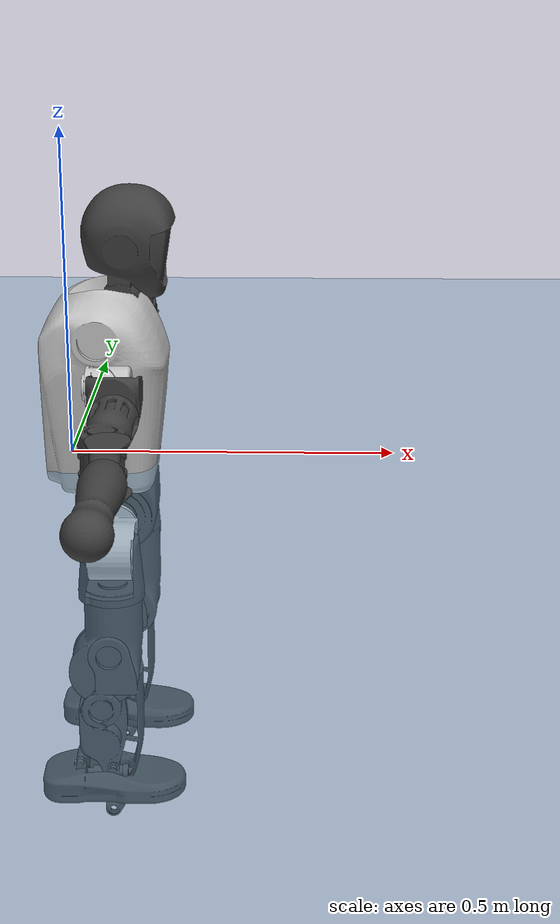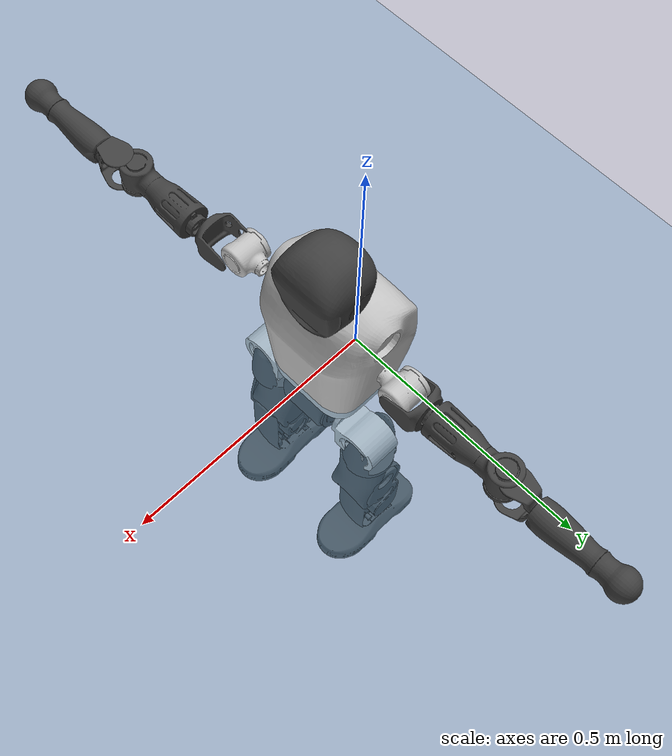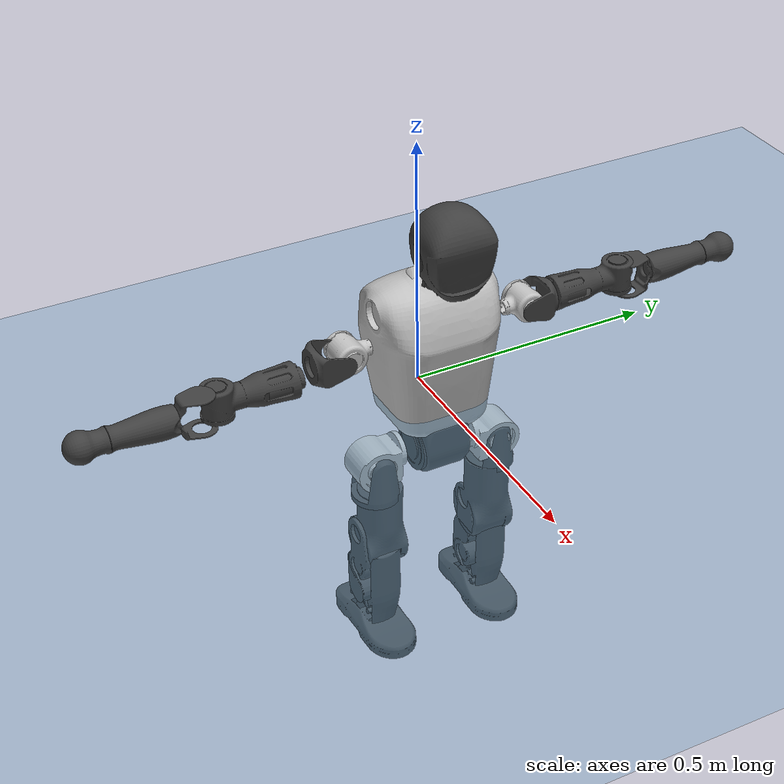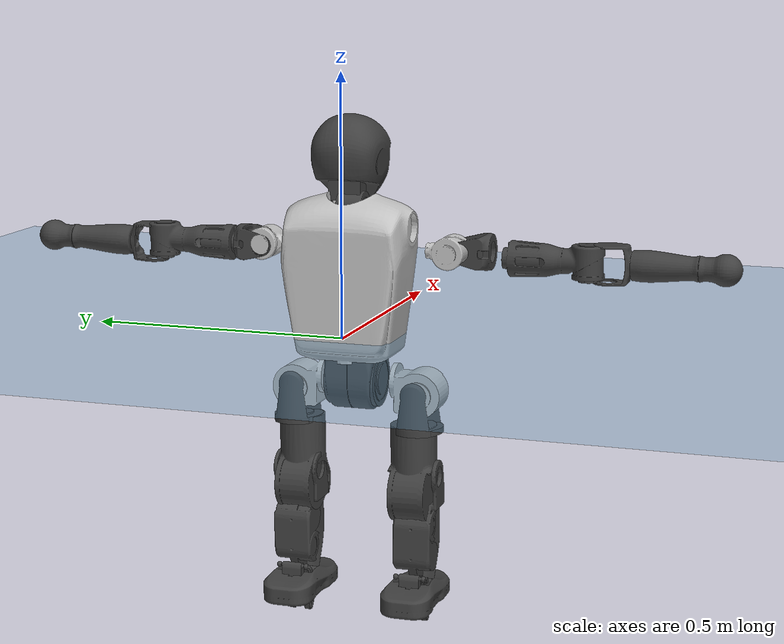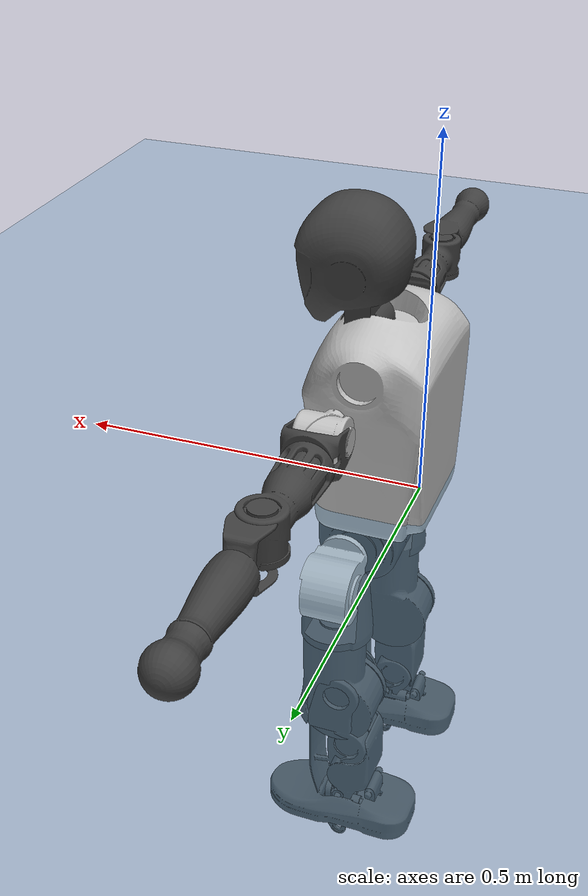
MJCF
<mujoco model="T1">
  <compiler angle="radian" assetdir="assets" balanceinertia="true" inertiafromgeom="false"/>

  <option timestep="0.005" density="1.2" viscosity="2e-05"/>

  <size nkey="1"/>

  <visual>
    <quality shadowsize="8192"/>
    <map shadowclip="0.5"/>
  </visual>

  <default>
    <default class="/">
      <joint armature="0.01" damping="0.01" frictionloss="0.1"/>
      <geom contype="0" conaffinity="0" group="1" solref="-1000 -80"/>
      <site size="0.01 0.005 0.005" group="5"/>
      <general forcelimited="true" biastype="affine" gainprm="25" biasprm="0 -25 -0.6"/>
      <default class="t1">
        <geom rgba="0.25 0.25 0.25 1"/>
        <default class="visual">
          <geom type="mesh" group="2"/>
        </default>
        <default class="collision">
          <geom group="3"/>
        </default>
        <default class="foot">
          <geom size="0.1115 0.05 0.015" type="box" condim="6" group="4" priority="1" solimp="0.015 1 0.015"/>
        </default>
        <default class="reward_collision_sphere">
          <geom group="5" rgba="1 0 0 1"/>
        </default>
      </default>
    </default>
  </default>

  <asset>
    <texture type="skybox" colorspace="auto" name="//unnamed_texture_0" builtin="gradient" rgb1="0.95 0.95 0.95" rgb2="0.95 0.95 0.95" width="100" height="600"/>
    <texture type="2d" colorspace="auto" name="texplane" builtin="checker" rgb1="0.345 0.575 0.748" rgb2="0.345 0.575 0.748" markrgb="1 1 1" width="512" height="512"/>
    <material name="MatPlane" class="/" texture="texplane" texuniform="true" texrepeat="2 2" specular="0.9"/>
    <mesh name="Trunk" class="/" file="Trunk.stl"/>
    <mesh name="H1" class="/" file="H1.stl"/>
    <mesh name="H2" class="/" file="H2.stl"/>
    <mesh name="AL1" class="/" file="AL1.stl"/>
    <mesh name="AL2" class="/" file="AL2.stl"/>
    <mesh name="AL3" class="/" file="AL3.stl"/>
    <mesh name="left_hand_link" class="/" file="left_hand_link.stl"/>
    <mesh name="AR1" class="/" file="AR1.stl"/>
    <mesh name="AR2" class="/" file="AR2.stl"/>
    <mesh name="AR3" class="/" file="AR3.stl"/>
    <mesh name="right_hand_link" class="/" file="right_hand_link.stl"/>
    <mesh name="Waist" class="/" file="Waist.stl"/>
    <mesh name="Hip_Pitch_Left" class="/" file="Hip_Pitch_Left.stl"/>
    <mesh name="Hip_Roll_Left" class="/" file="Hip_Roll_Left.stl"/>
    <mesh name="Hip_Yaw_Left" class="/" file="Hip_Yaw_Left.stl"/>
    <mesh name="Shank_Left" class="/" file="Shank_Left.stl"/>
    <mesh name="Ankle_Cross_Left" class="/" file="Ankle_Cross_Left.stl"/>
    <mesh name="left_foot_link" class="/" file="left_foot_link.stl"/>
    <mesh name="Hip_Pitch_Right" class="/" file="Hip_Pitch_Right.stl"/>
    <mesh name="Hip_Roll_Right" class="/" file="Hip_Roll_Right.stl"/>
    <mesh name="Hip_Yaw_Right" class="/" file="Hip_Yaw_Right.stl"/>
    <mesh name="Shank_Right" class="/" file="Shank_Right.stl"/>
    <mesh name="Ankle_Cross_Right" class="/" file="Ankle_Cross_Right.stl"/>
    <mesh name="right_foot_link" class="/" file="right_foot_link.stl"/>
  </asset>

  <worldbody>
    <geom name="floor" class="/" size="100 100 0.125" type="plane" group="0" material="MatPlane"/>
    <light name="toplight_shadow" class="/" pos="0 0 5" dir="0.0990148 0.0990148 -0.990148" type="directional" ambient="0.04 0.04 0.04" diffuse="0.55 0.55 0.55" specular="0.12 0.12 0.12"/>
    <light name="toplight_fill" class="/" pos="0 0 5" dir="0.0990148 0.0990148 -0.990148" type="directional" castshadow="false" ambient="0.04 0.04 0.04" diffuse="0.3 0.3 0.3" specular="0.08 0.08 0.08"/>
    <body name="trunk" childclass="t1" pos="-0.000451746 0.000123882 -0.00989395" quat="1 0.000141531 -0.000262304 -7.70532e-05">
      <inertial pos="0.069421 -0.0018916 0.0860988" quat="0.999344 0.0224752 -0.0266237 -0.00992487" mass="16.6336" diaginertia="0.29282 0.22826 0.0183796"/>
      <joint name="//unnamed_joint_0" type="free" armature="0" damping="0" frictionloss="0"/>
      <geom name="//unnamed_geom_1" class="visual" rgba="0.76 0.76 0.76 1" mesh="Trunk"/>
      <geom name="//unnamed_geom_2" class="collision" size="0.0820794 0.109439 0.164159" pos="0.074825 0 0.094157" type="box"/>
      <geom name="//unnamed_geom_3" class="reward_collision_sphere" size="0.125855" pos="0.074825 0 0.0784641"/>
      <geom name="//unnamed_geom_4" class="reward_collision_sphere" size="0.0164159" pos="0.074825 0.106373 0"/>
      <geom name="//unnamed_geom_5" class="reward_collision_sphere" size="0.0164159" pos="0.074825 -0.106373 0"/>
      <geom name="//unnamed_geom_6" class="reward_collision_sphere" size="0.0164159" pos="0.074825 0.133905 0.141235"/>
      <geom name="//unnamed_geom_7" class="reward_collision_sphere" size="0.0164159" pos="0.074825 -0.133905 0.141235"/>
      <site name="imu" pos="-0.0671522 0.0566216 -0.0253066" size="0.0109439"/>
      <camera name="track" pos="0 -2.5029 0" quat="0.707107 0.707107 0 0" mode="trackcom"/>
      <camera name="ego_camera" pos="0.152144 0 0.329549" quat="-0.5 -0.5 0.5 0.5"/>
      <body name="H1" pos="0.0824363 0.0069827 0.187325" quat="0.999994 0.00250921 0.00223633 -0.000477261">
        <inertial pos="-0.00229672 4.6382e-05 0.0471835" quat="0.762164 0.00174839 -0.00660485 0.647348" mass="0.550786" diaginertia="0.000629006 0.000668078 3.73822e-05"/>
        <joint name="AAHead_yaw" pos="0 0 0" axis="0.00515528 -0.00741061 0.999959" range="-1.67025 1.42008" armature="0.00918294" damping="0.00941906" frictionloss="0.126633"/>
        <geom name="//unnamed_geom_8" class="visual" mesh="H1"/>
        <body name="H2" pos="0.000277 0.0119528 0.048216" quat="1 0.000312956 -0.000277874 0.000343192">
          <inertial pos="-0.00411206 -0.0109247 0.0692676" quat="0.98812 0.115131 -0.0571392 -0.0842541" mass="0.695775" diaginertia="0.00584532 0.00624563 0.000525422"/>
          <joint name="Head_pitch" pos="0 0 0" axis="-0.00150434 -0.999894 -0.0144514" range="-1.23193 0.18734" armature="0.0172443" damping="0.0406966" frictionloss="0.113349"/>
          <geom name="//unnamed_geom_9" class="visual" mesh="H2"/>
          <geom name="//unnamed_geom_10" class="collision" size="0.0875513" pos="0.0124708 0 0.0863106"/>
          <geom name="//unnamed_geom_11" class="reward_collision_sphere" size="0.0984953" pos="0.0249417 0 0.0784641"/>
        </body>
      </body>
      <body name="AL1" pos="0.0812195 0.135371 0.172601" quat="0.999995 0.00126179 0.00220451 0.00172206">
        <inertial pos="-0.00641059 0.0503038 -0.0121035" quat="0.481032 0.503959 -0.499136 0.515264" mass="0.728281" diaginertia="0.00427624 0.00405443 8.26999e-05"/>
        <joint name="Left_Shoulder_Pitch" pos="0 0 0" axis="0.0130431 0.999838 -0.0123788" stiffness="0.0538028" range="-3.07696 1.38264" armature="0.00992439" damping="0.0138351" frictionloss="0.102589"/>
        <geom name="//unnamed_geom_12" class="visual" rgba="0.76 0.76 0.76 1" mesh="AL1"/>
        <body name="AL2" pos="0.00044623 0.0471747 -0.00304116" quat="0.999977 0.005927 0.00119771 0.00300374">
          <inertial pos="-0.000586439 0.0463345 0.00952753" quat="0.489495 0.514142 -0.489801 0.506111" mass="0.146523" diaginertia="0.00102498 0.000787995 4.5551e-05"/>
          <joint name="Left_Shoulder_Roll" pos="0 0 0" axis="-0.997448 -0.046839 0.0538803" stiffness="0.0321048" range="-1.42071 1.77102" armature="0.00755256" damping="0.0698763" frictionloss="0.133615"/>
          <geom name="//unnamed_geom_13" class="visual" mesh="AL2"/>
          <body name="AL3" pos="-0.00453455 0.0641546 -0.00168198" quat="0.999975 -0.00686076 -0.0014411 0.000351318">
            <inertial pos="-0.00031885 0.107027 0.0010263" quat="0.67778 0.734483 -0.0330813 0.0074204" mass="1.13819" diaginertia="0.0328846 0.0335543 0.000168575"/>
            <joint name="Left_Elbow_Pitch" pos="0 0 0" axis="-0.00568376 -0.999974 -0.00436473" range="-2.15844 2.28582" armature="0.0113835" damping="0.00713839" frictionloss="0.116068"/>
            <geom name="//unnamed_geom_14" class="visual" mesh="AL3"/>
            <geom name="//unnamed_geom_15" class="collision" size="0.0328318 0.0820794" pos="0 0.0625725 0" quat="0.707105 0.707108 0 0" type="cylinder"/>
            <geom name="//unnamed_geom_16" class="reward_collision_sphere" size="0.0393981"/>
            <body name="left_hand_link" pos="0.0035372 0.171045 -0.00783673" quat="0.999981 0.00512149 0.000193715 0.00336763">
              <inertial pos="0.00140558 0.14265 0.012166" quat="0.672138 0.739823 0.029834 -0.00154591" mass="0.512784" diaginertia="0.0266299 0.0296701 8.07937e-05"/>
              <joint name="Left_Elbow_Yaw" pos="0 0 0" axis="-0.0109252 0.0523775 0.998568" range="-2.3989 -0.196706" armature="0.0105164" damping="0.0451737" frictionloss="0.0360044"/>
              <geom name="//unnamed_geom_17" class="visual" mesh="left_hand_link"/>
              <geom name="//unnamed_geom_18" class="collision" size="0.0328318 0.0957593" pos="0 0.162688 0" quat="0.707105 0.707108 0 0" type="cylinder"/>
              <geom name="//unnamed_geom_19" class="reward_collision_sphere" size="0.0547196"/>
              <geom name="//unnamed_geom_20" class="reward_collision_sphere" size="0.0383037" pos="0 0.137659 0"/>
              <geom name="//unnamed_geom_21" class="reward_collision_sphere" size="0.0383037" pos="0 0.269062 0"/>
            </body>
          </body>
        </body>
      </body>
      <body name="AR1" pos="0.0825074 -0.141742 0.172425" quat="1 0.000412281 8.67018e-05 0.000433508">
        <inertial pos="-0.000323014 -0.0538312 -0.000634209" quat="0.504764 0.495857 -0.503679 0.495628" mass="0.646353" diaginertia="0.00417943 0.00412738 8.6619e-05"/>
        <joint name="Right_Shoulder_Pitch" pos="0 0 0" axis="0.0281255 -0.999483 -0.0156076" range="-1.47118 3.33158" armature="0.0104977" damping="0" frictionloss="0.101936"/>
        <geom name="//unnamed_geom_22" class="visual" rgba="0.76 0.76 0.76 1" mesh="AR1"/>
        <body name="AR2" pos="0.0120844 -0.0683392 0.00184184" quat="0.999995 -0.00267346 -0.000179238 0.00158079">
          <inertial pos="0.0118545 -0.0524272 0.00892943" quat="0.49363 0.51479 -0.515946 0.474468" mass="0.194142" diaginertia="0.00130416 0.00116823 5.13369e-05"/>
          <joint name="Right_Shoulder_Roll" pos="0 0 0" axis="-0.999913 -0.00220964 0.0130107" range="-1.86724 1.81631" armature="0.0115961" damping="0.0014095" frictionloss="0.174131"/>
          <geom name="//unnamed_geom_23" class="visual" mesh="AR2"/>
          <body name="AR3" pos="0.00644297 -0.0889981 -0.0113548" quat="1 -0.000154126 -0.000251309 -0.000116167">
            <inertial pos="0.00049326 -0.103606 0.000522098" quat="0.742583 0.668069 -0.0422386 -0.0216813" mass="1.46876" diaginertia="0.0426948 0.0359979 0.000194309"/>
            <joint name="Right_Elbow_Pitch" pos="0 0 0" axis="0.00153099 0.999997 0.00187295" range="-2.30148 2.23622" armature="0.0118956" damping="0" frictionloss="0.0408196"/>
            <geom name="//unnamed_geom_24" class="visual" mesh="AR3"/>
            <geom name="//unnamed_geom_25" class="collision" size="0.0328318 0.0820794" pos="0 -0.0625725 0" quat="0.707105 0.707108 0 0" type="cylinder"/>
            <geom name="//unnamed_geom_26" class="reward_collision_sphere" size="0.0393981"/>
            <body name="right_hand_link" pos="0.0112514 -0.182331 -0.00373735" quat="0.999995 0.0012005 -0.00259053 -0.00154078">
              <inertial pos="-0.00170067 -0.136713 -0.0115707" quat="0.704501 0.707305 0.0150984 0.0562967" mass="0.488831" diaginertia="0.0314746 0.0294469 7.32871e-05"/>
              <joint name="Right_Elbow_Yaw" pos="0 0 0" axis="-0.00176629 0.00105579 0.999998" range="0.196827 2.3939" armature="0.0030556" damping="0.023476" frictionloss="0.112054"/>
              <geom name="//unnamed_geom_27" class="visual" mesh="right_hand_link"/>
              <geom name="//unnamed_geom_28" class="collision" size="0.0328318 0.0957593" pos="0 -0.162688 0" quat="0.707105 0.707108 0 0" type="cylinder"/>
              <geom name="//unnamed_geom_29" class="reward_collision_sphere" size="0.0547196"/>
              <geom name="//unnamed_geom_30" class="reward_collision_sphere" size="0.0383037" pos="0 -0.137659 0"/>
              <geom name="//unnamed_geom_31" class="reward_collision_sphere" size="0.0383037" pos="0 -0.269062 0"/>
            </body>
          </body>
        </body>
      </body>
      <body name="Waist" pos="0.0743618 -0.00418253 -0.0808658" quat="1 1.73126e-06 -7.48434e-05 -0.000105788">
        <inertial pos="-0.00947348 -0.00121091 0.00673464" quat="0.981424 -0.0168975 -0.189856 0.0218223" mass="3.41867" diaginertia="0.0181095 0.0211291 0.00155557"/>
        <joint name="Waist" pos="0 0 0" axis="-0.0123869 0.0136039 0.999831" range="-1.84239 1.46356" armature="0.0163518" damping="0.00982774" frictionloss="0.112262"/>
        <geom name="//unnamed_geom_32" class="visual" mesh="Waist"/>
        <body name="Hip_Pitch_Left" pos="0.0120023 0.121434 -0.0036212" quat="0.99998 -0.00515932 0.00299943 0.0020899">
          <inertial pos="0.00812032 -0.0223824 -0.0159975" quat="0.974821 0.222696 0.00944906 0.00640182" mass="1.50926" diaginertia="0.00607003 0.00405732 0.000416709"/>
          <joint name="Left_Hip_Pitch" pos="0 0 0" axis="0.00695553 0.999949 0.00725904" range="-1.78621 1.40979" armature="0.011226" damping="0" frictionloss="0.108354"/>
          <geom name="//unnamed_geom_33" class="visual" rgba="0.76 0.76 0.76 1" mesh="Hip_Pitch_Left"/>
          <body name="Hip_Roll_Left" pos="-0.00689887 0.00106464 -0.0118177" quat="0.999984 -0.00337531 0.0015902 -0.00420695">
            <inertial pos="0.00160947 -0.00102181 -0.0388433" quat="0.707682 -0.00349171 -0.00108234 0.706522" mass="0.517581" diaginertia="0.00530316 0.00538898 0.00017626"/>
            <joint name="Left_Hip_Roll" pos="0 0 0" axis="-0.999997 0.000696821 -0.00233133" stiffness="0.0365584" range="-1.62875 0.273088" armature="0.0116652" damping="0.00539079" frictionloss="0.0550976"/>
            <geom name="//unnamed_geom_34" class="visual" mesh="Hip_Roll_Left"/>
            <geom name="//unnamed_geom_35" class="reward_collision_sphere" size="0.0601915"/>
            <body name="Hip_Yaw_Left" pos="0.00258771 -0.00654408 -0.0659211" quat="0.999992 0.00188664 -0.00179716 -0.0028855">
              <inertial pos="-0.00989379 -0.00105465 -0.0706212" quat="0.667441 0.00777917 -0.0653017 0.741753" mass="3.04817" diaginertia="0.0763205 0.0906924 0.00070597"/>
              <joint name="Left_Hip_Yaw" pos="0 0 0" axis="0.00630133 -0.056331 -0.998392" range="-0.999458 0.987629" armature="0.0115117" damping="0.0184016" frictionloss="0.111212"/>
              <geom name="//unnamed_geom_36" class="visual" mesh="Hip_Yaw_Left"/>
              <geom name="//unnamed_geom_37" class="collision" size="0.0547196 0.0875513" type="cylinder"/>
              <body name="Shank_Left" pos="-0.0180027 0.000751754 -0.103496" quat="0.999994 0.0033684 -2.38663e-05 -0.000491134">
                <inertial pos="-0.00812636 -0.00385138 -0.0996748" quat="0.997983 -0.0369895 -0.0349225 0.0379861" mass="2.16955" diaginertia="0.115733 0.0972702 0.0005707"/>
                <joint name="Left_Knee_Pitch" pos="0 0 0" axis="0.00936152 0.999946 -0.00449941" range="-0.0957972 2.33627" armature="0.00875939" damping="0.00309609" frictionloss="0.0499396"/>
                <geom name="//unnamed_geom_38" class="visual" mesh="Shank_Left"/>
                <geom name="//unnamed_geom_39" class="collision" size="0.0547196 0.0820794" pos="0 0 -0.094157" type="cylinder"/>
                <geom name="//unnamed_geom_40" class="reward_collision_sphere" size="0.0711355"/>
                <body name="Ankle_Cross_Left" pos="0.0055667 -0.00108965 -0.223749" quat="0.999993 -0.000661683 8.88333e-05 0.00376136">
                  <inertial pos="-0.00346713 -0.0064457 0.00740686" quat="0.447098 0.552921 0.561054 0.423792" mass="0.0802816" diaginertia="6.43622e-05 7.43815e-05 3.1437e-06"/>
                  <joint name="Left_Ankle_Pitch" pos="0 0 0" axis="-0.0341344 0.999416 -0.00136063" stiffness="0.00234712" range="-0.592784 0.203301" armature="0.0146133" damping="0" frictionloss="0.0478633"/>
                  <geom name="//unnamed_geom_41" class="visual" mesh="Ankle_Cross_Left"/>
                  <body name="left_foot_link" pos="-0.0114398 0.000212248 0.00255623" quat="0.999998 0.00158774 0.000697893 -0.00134121">
                    <inertial pos="0.00367444 0.0122757 -0.00959523" quat="0.00381989 0.622116 -0.00107187 0.782915" mass="0.95201" diaginertia="0.00716618 0.00722526 0.000610192"/>
                    <joint name="Left_Ankle_Roll" pos="0 0 0" axis="-0.999805 0.0112554 0.0162307" range="-0.283757 0.542263" armature="0.0115685" damping="0.0279498" frictionloss="0.105106"/>
                    <geom name="//unnamed_geom_42" class="visual" mesh="left_foot_link"/>
                    <geom name="left_foot" class="foot" size="0.102296 0.0493403 0.0128078" pos="0.0124708 0 -0.0117696"/>
                    <geom name="//unnamed_geom_44" class="reward_collision_sphere" size="0.0569084" pos="0.0124708 0 -0.0117696"/>
                    <geom name="//unnamed_geom_45" class="reward_collision_sphere" size="0.0328318" pos="0.118473 -0.0287833 -0.0117696"/>
                    <geom name="//unnamed_geom_46" class="reward_collision_sphere" size="0.0328318" pos="-0.0872959 -0.0287833 -0.0117696"/>
                    <site name="left_foot" class="foot" pos="0.0124708 0 -0.0117696" size="0.0109439"/>
                  </body>
                </body>
              </body>
            </body>
          </body>
        </body>
        <body name="Hip_Pitch_Right" pos="-0.000223015 -0.131194 -1.57313e-05" quat="0.999994 -0.000955633 0.00197496 0.00278555">
          <inertial pos="0.00267788 0.00571566 -0.0263748" quat="0.967468 -0.248199 -0.0108731 -0.0478007" mass="1.28486" diaginertia="0.00521268 0.00424458 0.000312462"/>
          <joint name="Right_Hip_Pitch" pos="0 0 0" axis="0.0495369 -0.998726 -0.00959667" stiffness="0.0306381" range="-1.58933 1.76872" armature="0.00568167" damping="0.020542" frictionloss="0.071135"/>
          <geom name="//unnamed_geom_47" class="visual" rgba="0.76 0.76 0.76 1" mesh="Hip_Pitch_Right"/>
          <body name="Hip_Roll_Right" pos="-0.00128694 0.00634179 -0.0195823" quat="0.999976 -0.00464408 0.000602678 0.00506607">
            <inertial pos="-0.0120051 -0.00425911 -0.0336351" quat="0.727077 0.034432 -0.00276415 0.685686" mass="0.564015" diaginertia="0.00650069 0.00499984 0.000173194"/>
            <joint name="Right_Hip_Roll" pos="0 0 0" axis="-0.999967 -0.00518802 -0.00630046" stiffness="0.00448679" range="-0.197834 1.37071" armature="0.0109785" damping="0.00242288" frictionloss="0.110038"/>
            <geom name="//unnamed_geom_48" class="visual" mesh="Hip_Roll_Right"/>
            <geom name="//unnamed_geom_49" class="reward_collision_sphere" size="0.0601915"/>
            <body name="Hip_Yaw_Right" pos="-0.00159049 0.00956193 -0.0620092" quat="0.999983 -0.00154356 -0.000684947 0.00562367">
              <inertial pos="-0.0164887 0.00168926 -0.0741835" quat="0.729357 -0.000210417 -0.0492958 0.682354" mass="2.29315" diaginertia="0.0567532 0.0549766 0.000608617"/>
              <joint name="Right_Hip_Yaw" pos="0 0 0" axis="-0.0145 0.0160622 -0.999766" range="-1.04618 1.27222" armature="0.010032" damping="0.0056126" frictionloss="0.17424"/>
              <geom name="//unnamed_geom_50" class="visual" mesh="Hip_Yaw_Right"/>
              <geom name="//unnamed_geom_51" class="collision" size="0.0547196 0.0875513" type="cylinder"/>
              <body name="Shank_Right" pos="-0.00500089 -0.00852604 -0.0997063" quat="0.999983 0.00540485 0.00164178 0.00136402">
                <inertial pos="-0.0186171 -0.00705029 -0.0948806" quat="0.9993 -0.0051781 -0.0243862 -0.0278799" mass="1.98575" diaginertia="0.107088 0.124479 0.000666919"/>
                <joint name="Right_Knee_Pitch" pos="0 0 0" axis="-0.0102074 -0.999944 -0.00262255" range="-2.2731 -0.0129012" armature="0.0109032" damping="0" frictionloss="0.0792666"/>
                <geom name="//unnamed_geom_52" class="visual" mesh="Shank_Right"/>
                <geom name="//unnamed_geom_53" class="collision" size="0.0547196 0.0820794" pos="0 0 -0.094157" type="cylinder"/>
                <geom name="//unnamed_geom_54" class="reward_collision_sphere" size="0.0711355"/>
                <body name="Ankle_Cross_Right" pos="0.000307415 0.000315788 -0.210374" quat="0.999984 0.00424979 -0.00361486 -0.000987888">
                  <inertial pos="-0.00532374 0.00014912 -0.00645817" quat="0.435163 0.561298 0.533675 0.459096" mass="0.121444" diaginertia="9.66468e-05 8.84128e-05 3.79295e-06"/>
                  <joint name="Right_Ankle_Pitch" pos="0 0 0" axis="-0.0105368 -0.997582 0.0687029" range="-0.344271 1.0474" armature="0.00547916" damping="0.0474666" frictionloss="0.183878"/>
                  <geom name="//unnamed_geom_55" class="visual" mesh="Ankle_Cross_Right"/>
                  <body name="right_foot_link" pos="-0.00882863 0.00108679 -0.0137004" quat="0.999994 0.000124959 0.00338701 0.000160061">
                    <inertial pos="-0.00351743 3.37213e-05 0.00379464" quat="-0.00103878 0.625643 -0.00241332 0.780105" mass="0.729564" diaginertia="0.00842963 0.00679046 0.000654196"/>
                    <joint name="Right_Ankle_Roll" pos="0 0 0" axis="-0.99876 0.0137851 0.0478362" range="-0.71609 0.317749" armature="0.0165454" damping="0.0114888" frictionloss="0.107303"/>
                    <geom name="//unnamed_geom_56" class="visual" mesh="right_foot_link"/>
                    <geom name="right_foot" class="foot" size="0.181406 0.0344777 0.0147109" pos="0.0124708 0 -0.0117696"/>
                    <geom name="//unnamed_geom_58" class="reward_collision_sphere" size="0.0437757"/>
                    <geom name="//unnamed_geom_59" class="reward_collision_sphere" size="0.0328318" pos="0.0124708 0 -0.0117696"/>
                    <geom name="//unnamed_geom_60" class="reward_collision_sphere" size="0.0328318" pos="0.118473 0.0287833 -0.0117696"/>
                    <geom name="//unnamed_geom_61" class="reward_collision_sphere" size="0.0328318" pos="-0.0872959 0.0287833 -0.0117696"/>
                    <site name="right_foot" class="foot" pos="0.0124708 0 -0.0117696" size="0.0109439"/>
                  </body>
                </body>
              </body>
            </body>
          </body>
        </body>
      </body>
    </body>
  </worldbody>

  <contact>
    <pair class="/" geom1="floor" geom2="left_foot" name="//unnamed_contact_0"/>
    <pair class="/" geom1="floor" geom2="right_foot" name="//unnamed_contact_1"/>
  </contact>

  <actuator>
    <general name="AAHead_yaw" class="/" joint="AAHead_yaw" forcerange="-9.40314 9.40314" gainprm="20.7444" biasprm="0 -20.7444 -0.58355"/>
    <general name="Head_pitch" class="/" joint="Head_pitch" forcerange="-7.37802 7.37802" gainprm="20.7444" biasprm="0 -20.7444 -0.58355"/>
    <general name="Left_Shoulder_Pitch" class="/" joint="Left_Shoulder_Pitch" forcerange="-18.3631 18.3631" gainprm="20.7444" biasprm="0 -20.7444 -0.58355"/>
    <general name="Left_Shoulder_Roll" class="/" joint="Left_Shoulder_Roll" forcerange="-18.6959 18.6959" gainprm="20.7444" biasprm="0 -20.7444 -0.58355"/>
    <general name="Left_Elbow_Pitch" class="/" joint="Left_Elbow_Pitch" forcerange="-11.9236 11.9236" gainprm="20.7444" biasprm="0 -20.7444 -0.58355"/>
    <general name="Left_Elbow_Yaw" class="/" joint="Left_Elbow_Yaw" forcerange="-21.1319 21.1319" gainprm="20.7444" biasprm="0 -20.7444 -0.58355"/>
    <general name="Right_Shoulder_Pitch" class="/" joint="Right_Shoulder_Pitch" forcerange="-20.7155 20.7155" gainprm="20.7444" biasprm="0 -20.7444 -0.58355"/>
    <general name="Right_Shoulder_Roll" class="/" joint="Right_Shoulder_Roll" forcerange="-20.1715 20.1715" gainprm="20.7444" biasprm="0 -20.7444 -0.58355"/>
    <general name="Right_Elbow_Pitch" class="/" joint="Right_Elbow_Pitch" forcerange="-22.4082 22.4082" gainprm="20.7444" biasprm="0 -20.7444 -0.58355"/>
    <general name="Right_Elbow_Yaw" class="/" joint="Right_Elbow_Yaw" forcerange="-11.595 11.595" gainprm="20.7444" biasprm="0 -20.7444 -0.58355"/>
    <general name="Waist" class="/" joint="Waist" forcerange="-25.96 25.96" gainprm="20.7444" biasprm="0 -20.7444 -0.58355"/>
    <general name="Left_Hip_Pitch" class="/" joint="Left_Hip_Pitch" forcerange="-74.2994 74.2994" gainprm="20.7444" biasprm="0 -20.7444 -0.58355"/>
    <general name="Left_Hip_Roll" class="/" joint="Left_Hip_Roll" forcerange="-30.1152 30.1152" gainprm="20.7444" biasprm="0 -20.7444 -0.58355"/>
    <general name="Left_Hip_Yaw" class="/" joint="Left_Hip_Yaw" forcerange="-27.9864 27.9864" gainprm="20.7444" biasprm="0 -20.7444 -0.58355"/>
    <general name="Left_Knee_Pitch" class="/" joint="Left_Knee_Pitch" forcerange="-38.0986 38.0986" gainprm="20.7444" biasprm="0 -20.7444 -0.58355"/>
    <general name="Left_Ankle_Pitch" class="/" joint="Left_Ankle_Pitch" forcerange="-20.4614 20.4614" gainprm="20.7444" biasprm="0 -20.7444 -0.58355"/>
    <general name="Left_Ankle_Roll" class="/" joint="Left_Ankle_Roll" forcerange="-15.5348 15.5348" gainprm="20.7444" biasprm="0 -20.7444 -0.58355"/>
    <general name="Right_Hip_Pitch" class="/" joint="Right_Hip_Pitch" forcerange="-26.1796 26.1796" gainprm="20.7444" biasprm="0 -20.7444 -0.58355"/>
    <general name="Right_Hip_Roll" class="/" joint="Right_Hip_Roll" forcerange="-29.5931 29.5931" gainprm="20.7444" biasprm="0 -20.7444 -0.58355"/>
    <general name="Right_Hip_Yaw" class="/" joint="Right_Hip_Yaw" forcerange="-28.0436 28.0436" gainprm="20.7444" biasprm="0 -20.7444 -0.58355"/>
    <general name="Right_Knee_Pitch" class="/" joint="Right_Knee_Pitch" forcerange="-46.1228 46.1228" gainprm="20.7444" biasprm="0 -20.7444 -0.58355"/>
    <general name="Right_Ankle_Pitch" class="/" joint="Right_Ankle_Pitch" forcerange="-26.6381 26.6381" gainprm="20.7444" biasprm="0 -20.7444 -0.58355"/>
    <general name="Right_Ankle_Roll" class="/" joint="Right_Ankle_Roll" forcerange="-24.1399 24.1399" gainprm="20.7444" biasprm="0 -20.7444 -0.58355"/>
  </actuator>

  <sensor>
    <gyro site="imu" name="imu_angular_velocity"/>
    <velocimeter site="imu" name="imu_linear_velocity"/>
    <framelinvel objtype="site" objname="left_foot" name="left_foot_global_linear_velocity"/>
    <framelinvel objtype="site" objname="right_foot" name="right_foot_global_linear_velocity"/>
  </sensor>

  <keyframe>
    <key name="home" qpos="0 0 0.6385 1 0 0 0 0 0 0 1.4 0 -0.4 0 -1.4 0 0.4 0 -0.4 0 0 0.8 -0.4 0 0.4 0 0 -0.8 0.4 0"/>
  </keyframe>
</mujoco>
